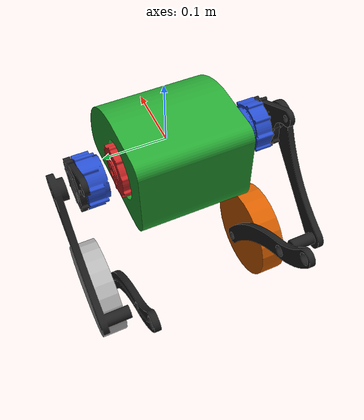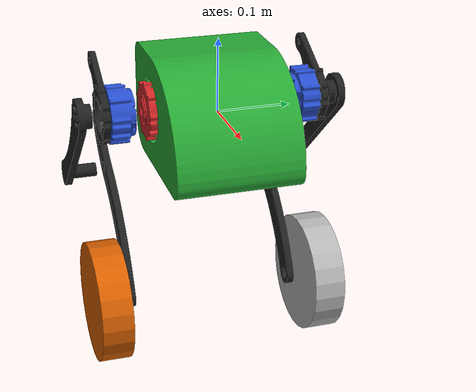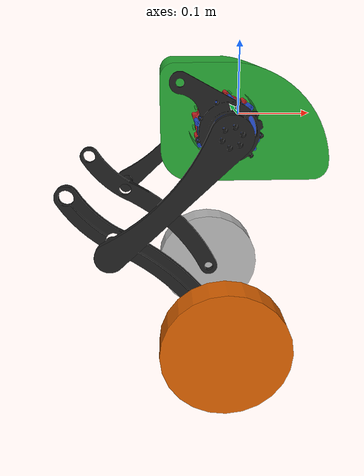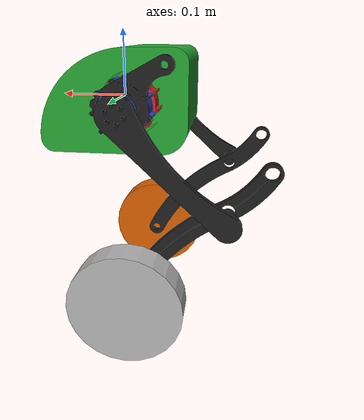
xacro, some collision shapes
<?xml version="1.0"?>
<robot xmlns:xacro="http://www.ros.org/wiki/xacro" name="otto">
    <!-- Declare PI -->
    <xacro:property name="PI" value="3.14159265359"/>
    <xacro:include filename="gazebotest.xacro"/>

    <!-- Base Link -->
    <link name="base_link">
        <inertial>
          <origin xyz="-0.02195199 0.0 0.0" rpy="0 0 0"/>
          <mass value="3.00"/>
          <inertia ixx="14584893e-9" ixy="0.0" ixz="0.0"
                   iyx="0.0" iyy="16663530e-9" iyz="0.0"
                   izx="0.0" izy="0.0" izz="20218332e-9" />
        </inertial>

        <visual>
            <origin rpy="0.0 0.0 0.0" xyz="0.0 0.0 0.0"/>
            <geometry>
              <mesh filename='file:///$(find otto_simulation)/meshes/Body.STL' scale="0.001 0.001 0.001"/>
            </geometry>
        </visual>

        <collision>
            <origin rpy="0.0 0.0 0.0" xyz="0.0 0.0 0.0"/>
            <geometry>
                <box size="0.22 0.19 0.15"/>
            </geometry>
        </collision>
    </link>

    <joint name="imu_joint" type="fixed">
      <axis xyz="0 1 0" />
      <parent link="base_link"/>
      <child link="imu_link"/>
    </joint>

    <!-- Camera -->
    <link name="imu_link">
      <inertial>
        <mass value="1e-5" />
        <origin xyz="0 0 0" rpy="0 0 0"/>
        <inertia ixx="1e-6" ixy="0" ixz="0" iyy="1e-6" iyz="0" izz="1e-6" />
      </inertial>
    </link>

    <!-- Hip Motor Left -->
    <link name="hip_motorL">
      <inertial>
        <origin xyz="0.0 0.0 0.0" rpy="0 0 0"/>
        <mass value="0.11255"/>
        <inertia ixx="0.090104e-3" ixy="0.000735e-3" ixz="0.00035172e-3"
                 iyx="0.000735e-3" iyy="0.074462e-3" iyz="0.000140e-3"
                 izx="0.000351e-3" izy="0.000140e-3" izz="0.091432e-3" />
      </inertial>

      <visual>
          <origin rpy="0.0 0.0 0.0" xyz="0.0 0.0 0.0"/>
          <geometry>
            <mesh filename='file:///$(find otto_simulation)/meshes/CyberGearmotor.STL' scale="0.001 0.001 0.001"/>
          </geometry>
      </visual>
    </link>

    <!-- Knee Motor Left -->
    <link name="knee_motorL">
      <inertial>
        <origin xyz="0.0 0.0 0.0" rpy="0 0 0"/>
        <mass value="0.11255"/>
        <inertia ixx="0.090104e-3" ixy="0.000735e-3" ixz="0.00035172e-3"
                 iyx="0.000735e-3" iyy="0.074462e-3" iyz="0.000140e-3"
                 izx="0.000351e-3" izy="0.000140e-3" izz="0.091432e-3" />
      </inertial>
      <visual>
          <origin rpy="0.0 0.0 0.0" xyz="0.0 0.0 0.0"/>
          <geometry>
            <mesh filename='file:///$(find otto_simulation)/meshes/CyberGearmotor.STL' scale="0.001 0.001 0.001"/>
          </geometry>
      </visual>
    </link>

    <!-- Hip link Left -->
    <link name="hip_linkL">
      <inertial>
        <origin xyz="0.0 0.0 0.0" rpy="0 0 0"/>
        <mass value="0.036"/>
        <inertia ixx="0.038283e-3" ixy="-0.00189e-3" ixz="-0.020858e-3"
                 iyx="0.00189e-3" iyy="0.066365e-3" iyz="0.0021110e-3"
                 izx="0.0208580e-3" izy="0.0021110e-3" izz="0.030274e-3" />
      </inertial>
      <visual>
          <origin rpy="0.0 0.0 0.0" xyz="0.0 0.0 0.0"/>
          <geometry>
            <mesh filename='file:///$(find otto_simulation)/meshes/link1.STL' scale="0.001 0.001 0.001"/>
          </geometry>
      </visual>
    </link>

    <!-- Knee link Left -->
    <link name="knee_linkL">
      <inertial>
        <origin xyz="0.0 0.0 0.0" rpy="0 0 0"/>
        <mass value="0.09629"/>
        <inertia ixx="808404e-10" iyy="1510417e-10" izz="743050e-10" ixy="0.0" iyz="0.0" ixz="0.0"/>
      </inertial>
      <visual>
          <origin rpy="0.0 0.0 0.0" xyz="0.0 0.0 0.0"/>
          <geometry>
            <mesh filename='file:///$(find otto_simulation)/meshes/link2.STL' scale="0.001 0.001 0.001"/>
          </geometry>
      </visual>
    </link>

    <!-- Leg link Left -->
    <link name="leg_linkL">
      <inertial>
        <origin xyz="0.0 0.0 0.0" rpy="0 0 0"/>
        <mass value="0.08537"/>
        <inertia ixx="421600e-9" iyy="982737e-9" izz="566988e-9" ixy="0.0" iyz="0.0" ixz="0.0"/>
      </inertial>
      <visual>
          <origin rpy="0.0 0.0 0.0" xyz="0.0 0.0 0.0"/>
          <geometry>
            <mesh filename='file:///$(find otto_simulation)/meshes/link4.STL' scale="0.001 0.001 0.001"/>
          </geometry>
      </visual>
      <collision>
        <origin rpy="0.0 0.0 0.0" xyz="-0.05656 0.00 0.05656"/>
        <geometry>
            <sphere radius="0.01"/>
        </geometry>
      </collision>

    </link>

    <!-- wheel link Left -->
    <link name="wheel_linkL">
      <inertial>
        <origin xyz="0.0 0.0 0.0" rpy="0 0 0"/>
        <mass value="0.51691"/>
        <inertia ixx="1.717624e-3" ixy="0.000049e-3" ixz="-0.000006e-3"
                 iyx="0.000049e-3" iyy="2.388020e-3" iyz="0.000004e-3"
                 izx="-0.000006e-3" izy="-0.000015e-3" izz="1.717603e-3" />
      </inertial>

      <visual>
          <origin rpy="${PI} 0.0 0.0" xyz="0.0 0.0 0.0"/>
          <geometry>
            <mesh filename='file:///$(find otto_simulation)/meshes/ODriveBotwheel.STL' scale="0.001 0.001 0.001"/>
          </geometry>
      </visual>
      <collision>
        <origin rpy="${PI/2} 0.0 0.0" xyz="0.0 0.02 0.0"/>
        <geometry>
            <cylinder radius="0.086" length="0.04416"/>
        </geometry>
      </collision>

    </link>

    <joint name="hip_jointL" type="fixed">
      <parent link="base_link"/>
      <child link="hip_motorL"/>
        <origin rpy="0.0 0.0 0.0" xyz="-0.03 0.06 0.0"/>
        <axis xyz="0.0 1.0 0.0"/>
      <dynamics damping="0.2" friction="0.05"/>
      <limit effort="50.0" lower="${-PI}" upper="${PI}" velocity="30"/>
    </joint>

    <joint name="hip_motorL_to_knee_motorL" type="fixed">
      <parent link="hip_motorL"/>
      <child link="knee_motorL"/>
      <origin rpy="0.0 0.0 0.0" xyz="0.0 0.05 0.0"/>
    </joint>

    <joint name="hip_motorL_to_hip_linkL" type="fixed">
      <parent link="knee_motorL"/>
      <child link="hip_linkL"/>
      <origin rpy="0.0 0.0 0.0" xyz="0.0 0.035 0.0"/>
    </joint>

    <joint name="knee_jointL" type="fixed">
      <parent link="knee_motorL"/>
      <child link="knee_linkL"/>
      <origin rpy="0.0 0.0 0.0" xyz="0.0 0.055 0.0"/>
      <axis xyz="0.0 1.0 0.0"/>
      <dynamics damping="0.1" friction="0.02"/>
      <limit effort="50.0" lower="${-PI}" upper="${PI}" velocity="30"/>
    </joint>

    <joint name="virtualhip_jointL" type="fixed">
      <parent link="knee_linkL"/>
      <child link="leg_linkL"/>
      <origin rpy="0.0 0.0 0.0" xyz="-0.1414 -0.05 -0.1414"/>
      <axis xyz="0.0 1.0 0.0"/>
      <dynamics damping="0.1" friction="0.05"/>
      <limit effort="50.0" lower="${-PI}" upper="${PI}" velocity="30"/>
    </joint>

    <joint name="wheel_jointL" type="continuous">
      <parent link="leg_linkL"/>
      <child link="wheel_linkL"/>
      <origin rpy="0.0 0.0 0.0" xyz="0.1414 0.02 -0.1414"/>
      <axis xyz="0.0 1.0 0.0"/>
      <dynamics damping="0.01" friction="0.0"/>
      <limit effort="300.0" velocity="3000"/>
    </joint>

    <!-- Right Side -->

    <!-- Hip Motor Right -->
    <link name="hip_motorR">
      <inertial>
        <origin xyz="0.0 0.0 0.0" rpy="0 0 0"/>
        <mass value="0.11255"/>
        <inertia ixx="0.090104e-3" ixy="0.000735e-3" ixz="0.00035172e-3"
                 iyx="0.000735e-3" iyy="0.074462e-3" iyz="0.000140e-3"
                 izx="0.000351e-3" izy="0.000140e-3" izz="0.091432e-3" />
      </inertial>
      <visual>
          <origin rpy="${PI} 0.0 0.0" xyz="0.0 0.0 0.0"/>
          <geometry>
            <mesh filename='file:///$(find otto_simulation)/meshes/CyberGearmotor.STL' scale="0.001 0.001 0.001"/>
          </geometry>
      </visual>
    </link>

    <!-- Knee Motor Right -->
    <link name="knee_motorR">
      <inertial>
        <origin xyz="0.0 0.0 0.0" rpy="0 0 0"/>
        <mass value="0.11255"/>
        <inertia ixx="0.090104e-3" ixy="0.000735e-3" ixz="0.00035172e-3"
                 iyx="0.000735e-3" iyy="0.074462e-3" iyz="0.000140e-3"
                 izx="0.000351e-3" izy="0.000140e-3" izz="0.091432e-3" />
      </inertial>
      <visual>
          <origin rpy="${PI} 0.0 0.0" xyz="0.0 0.0 0.0"/>
          <geometry>
            <mesh filename='file:///$(find otto_simulation)/meshes/CyberGearmotor.STL' scale="0.001 0.001 0.001"/>
          </geometry>
      </visual>

    </link>

    <!-- Hip link Right -->
    <link name="hip_linkR">
      <inertial>
        <origin xyz="0.0 0.0 0.0" rpy="0 0 0"/>
        <mass value="0.036"/>
        <inertia ixx="0.038283e-3" ixy="0.00189e-3" ixz="-0.020858e-3"
                 iyx="0.00189e-3" iyy="0.066365e-3" iyz="-0.0021110e-3"
                 izx="-0.0208580e-3" izy="-0.0021110e-3" izz="0.030274e-3" />
      </inertial>
      <visual>
          <origin rpy="0.0 0.0 0.0" xyz="0.0 0.0 0.0"/>
          <geometry>
            <mesh filename='file:///$(find otto_simulation)/meshes/link1R.STL' scale="0.001 0.001 0.001"/>
          </geometry>
      </visual>
    </link>

    <!-- Knee link Right -->
    <link name="knee_linkR">
      <inertial>
        <origin xyz="0.0 0.0 0.0" rpy="0 0 0"/>
        <mass value="0.09629"/>
        <inertia ixx="808404e-10" iyy="1510417e-10" izz="743050e-10" ixy="0.0" iyz="0.0" ixz="0.0"/>
      </inertial>
      <visual>
          <origin rpy="0.0 0.0 0.0" xyz="0.0 0.0 0.0"/>
          <geometry>
            <mesh filename='file:///$(find otto_simulation)/meshes/link2R.STL' scale="0.001 0.001 0.001"/>
          </geometry>
      </visual>
    </link>

    <!-- Leg link Right -->
    <link name="leg_linkR">
      <inertial>
        <origin xyz="0.0 0.0 0.0" rpy="0 0 0"/>
        <mass value="0.08537"/>
        <inertia ixx="421600e-9" iyy="982737e-9" izz="566988e-9" ixy="0.0" iyz="0.0" ixz="0.0"/>
      </inertial>
      <visual>
          <origin rpy="0.0 0.0 0.0" xyz="0.0 0.0 0.0"/>
          <geometry>
            <mesh filename='file:///$(find otto_simulation)/meshes/link4R.STL' scale="0.001 0.001 0.001"/>
          </geometry>
      </visual>
      <collision>
        <origin rpy="0.0 0.0 0.0" xyz="-0.05656 0.00 0.05656"/>
        <geometry>
            <sphere radius="0.01"/>
        </geometry>
      </collision>
    </link>

    <!-- wheel link Right -->
    <link name="wheel_linkR">
      <inertial>
        <origin xyz="0.0 0.0 0.0" rpy="0 0 0"/>
        <mass value="0.51691"/>
        <inertia ixx="1.717624e-3" ixy="0.000049e-3" ixz="-0.000006e-3"
                 iyx="0.000049e-3" iyy="2.388020e-3" iyz="0.000004e-3"
                 izx="-0.000006e-3" izy="-0.000015e-3" izz="1.717603e-3" />
      </inertial>

      <visual>
          <origin rpy="0.0 0.0 0.0" xyz="0.0 0.0 0.0"/>
          <geometry>
            <mesh filename='file:///$(find otto_simulation)/meshes/ODriveBotwheel.STL' scale="0.001 0.001 0.001"/>
          </geometry>
      </visual>
      <collision>
        <origin rpy="${PI/2} 0.0 0.0" xyz="0.0 -0.02 0.0"/>
        <geometry>
            <cylinder radius="0.086" length="0.04416"/>
        </geometry>
      </collision>
    </link>

    <joint name="hip_jointR" type="fixed">
      <parent link="base_link"/>
      <child link="hip_motorR"/>
        <origin rpy="0.0 0.0 0.0" xyz="-0.03 -0.06 0.0"/>
        <axis xyz="0.0 1.0 0.0"/>
        <dynamics damping="0.2" friction="0.05"/>
        <limit effort="15.0" lower="${-PI}" upper="${PI}" velocity="30"/>
      </joint>

    <joint name="hip_motorR_to_knee_motorR" type="fixed">
      <parent link="hip_motorR"/>
      <child link="knee_motorR"/>
      <origin rpy="0.0 0.0 0.0" xyz="0.0 -0.05 0.0"/>
    </joint>

    <joint name="hip_motorR_to_hip_linkR" type="fixed">
      <parent link="knee_motorR"/>
      <child link="hip_linkR"/>
      <origin rpy="0.0 0.0 0.0" xyz="0.0 -0.035 0.0"/>
    </joint>

    <joint name="knee_jointR" type="fixed">
      <parent link="knee_motorR"/>
      <child link="knee_linkR"/>
      <origin rpy="0.0 0.0 0.0" xyz="0.0 -0.055 0.0"/>
      <axis xyz="0.0 1.0 0.0"/>
      <dynamics damping="0.1" friction="0.02"/>
      <limit effort="15.0" lower="${-PI}" upper="${PI}" velocity="30"/>
    </joint>

    <joint name="virtualhip_jointR" type="fixed">
      <parent link="knee_linkR"/>
      <child link="leg_linkR"/>
      <origin rpy="0.0 0.0 0.0" xyz="-0.1414 0.05 -0.1414"/>
      <axis xyz="0.0 1.0 0.0"/>
      <dynamics damping="0.1" friction="0.05"/>
      <limit effort="15.0" lower="${-PI}" upper="${PI}" velocity="30"/>
    </joint>

    <joint name="wheel_jointR" type="continuous">
      <parent link="leg_linkR"/>
      <child link="wheel_linkR"/>
      <origin rpy="0.0 0.0 0.0" xyz="0.1414 -0.02 -0.1414"/>
      <axis xyz="0.0 1.0 0.0"/>
      <dynamics damping="0.01" friction="0.0"/>
      <limit effort="300.0" velocity="3000"/>
    </joint>

    <gazebo reference="imu_link">
      <gravity>true</gravity>
      <sensor name="imu_sensor" type="imu">
        <always_on>true</always_on>
        <update_rate>500.0</update_rate>
        <visualize>true</visualize>
        <plugin filename="libgazebo_ros_imu_sensor.so" name="imu_plugin">
          <topicName>otto_imu</topicName>
          <bodyName>imu_link</bodyName>
          <updateRateHZ>200.0</updateRateHZ>
          <gaussianNoise>0.0</gaussianNoise>
          <xyzOffset>0 0 0</xyzOffset>
          <rpyOffset>0 0 0</rpyOffset>
          <frameName>imu_link</frameName>
          <initialOrientationAsReference>false</initialOrientationAsReference>
        </plugin>
        <pose>0 0 0 0 0 0</pose>
      </sensor>
    </gazebo>

</robot>
